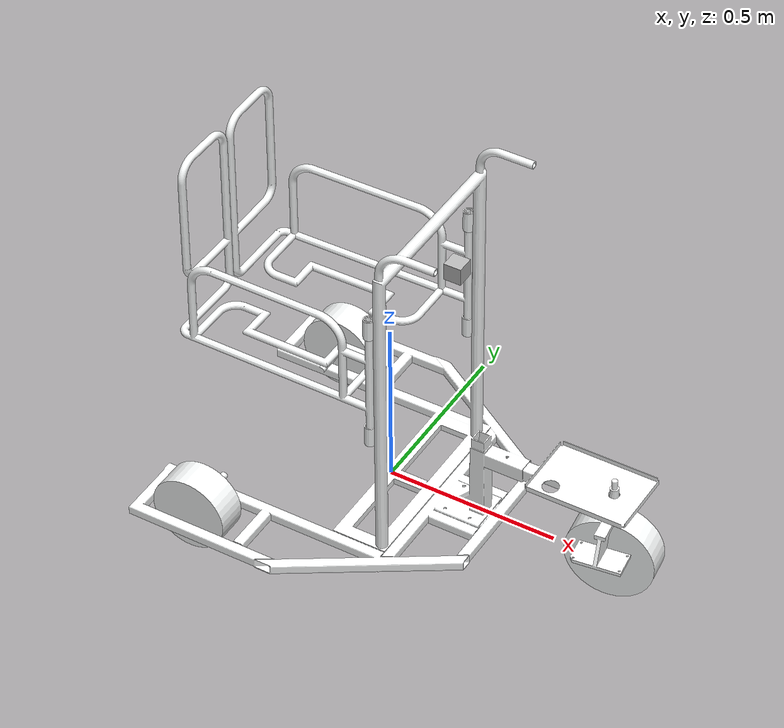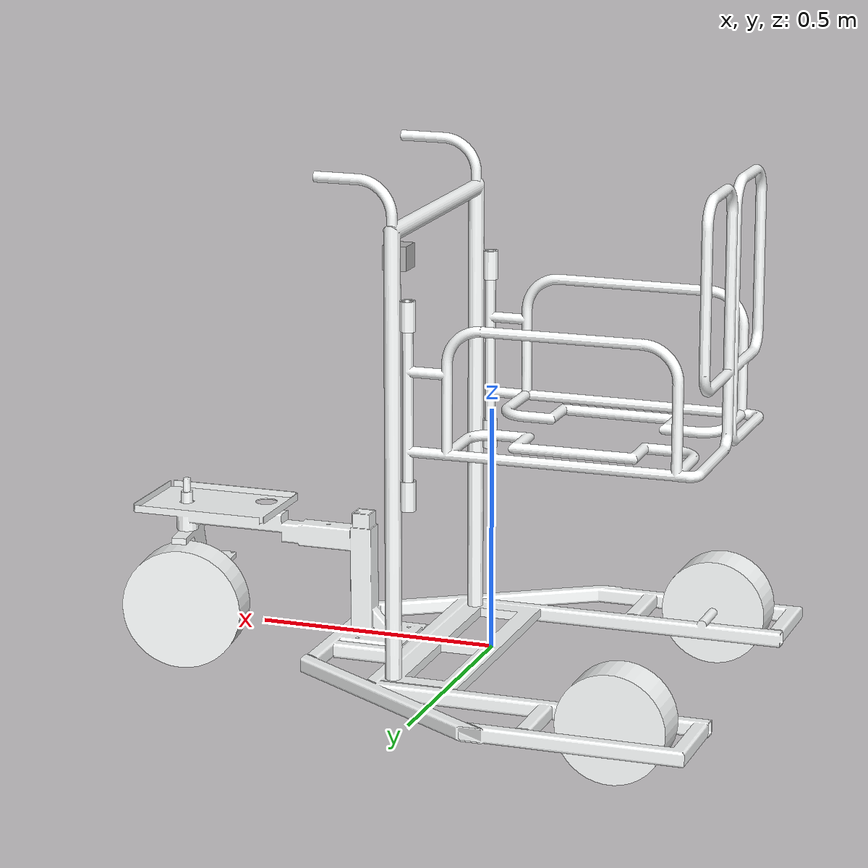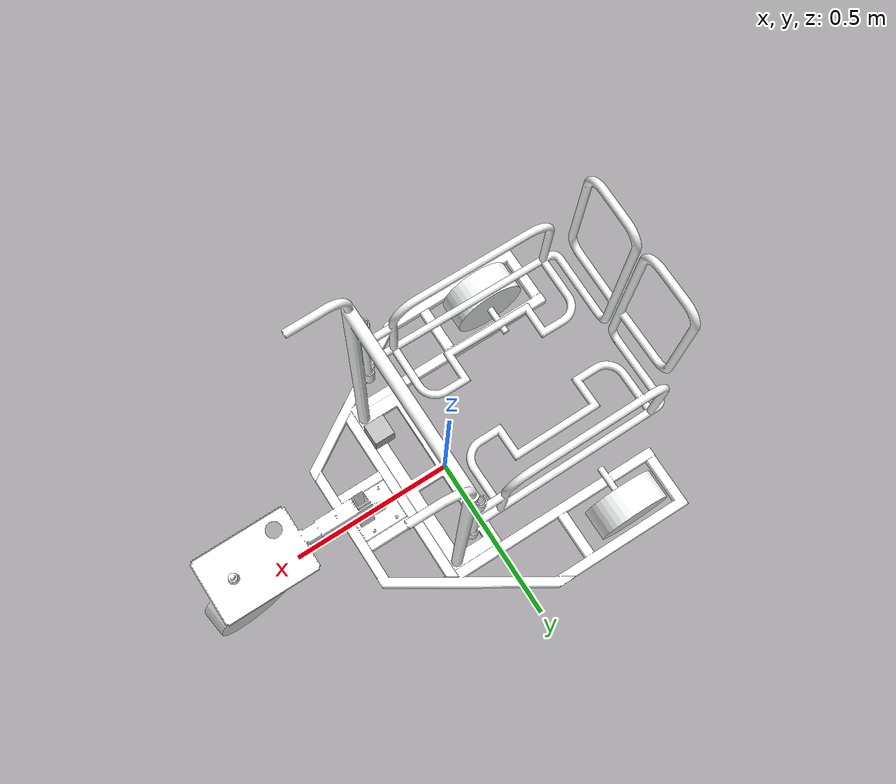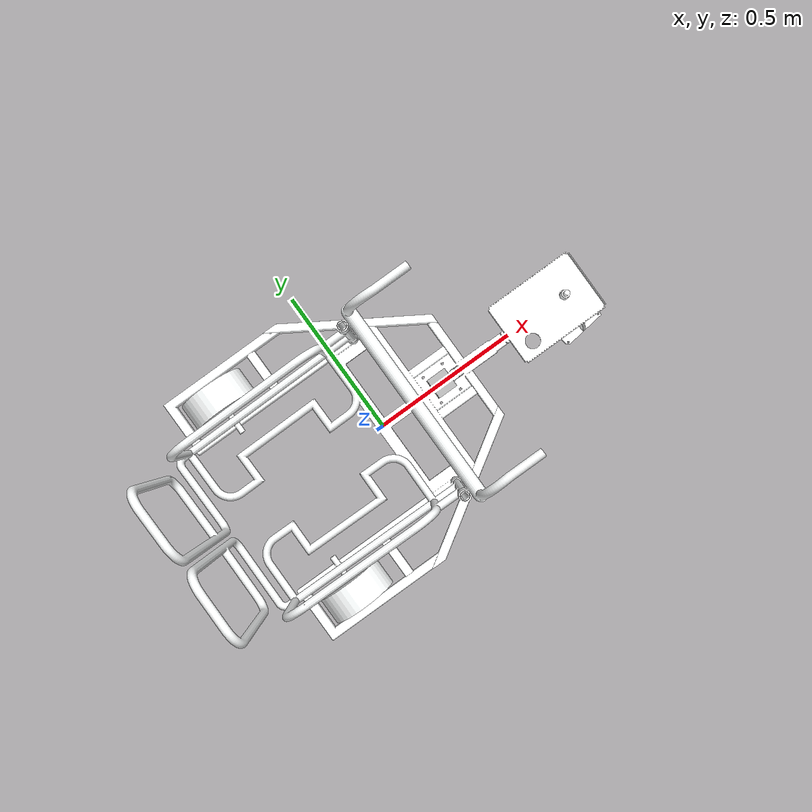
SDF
<sdf version='1.11'>
  <model name='robotdesign'>
    <link name='base_link'>
      <inertial>
        <pose>0.18001 2.8314999999999999e-06 0.14277000000000001 0 0 0</pose>
        <mass>6.1353999999999997</mass>
        <inertia>
          <ixx>0.092310000000000003</ixx>
          <ixy>0.0077965999999999999</ixy>
          <ixz>-0.0068618000000000004</ixz>
          <iyy>0.095326999999999995</iyy>
          <iyz>-5.9799999999999997e-05</iyz>
          <izz>0.056644</izz>
        </inertia>
      </inertial>
      <collision name='base_link_collision'>
        <pose>0 0 0 0 0 0</pose>
        <geometry>
          <mesh>
            <scale>1 1 1</scale>
            <uri>file:///home/kisali/fyp_ws/src/robotdesign/meshes/base_link.STL</uri>
          </mesh>
        </geometry>
      </collision>
      <visual name='base_link_visual'>
        <pose>0 0 0 0 0 0</pose>
        <geometry>
          <mesh>
            <scale>1 1 1</scale>
            <uri>file:///home/kisali/fyp_ws/src/robotdesign/meshes/base_link.STL</uri>
          </mesh>
        </geometry>
        <material>
          <diffuse>0.990199983 1 1 1</diffuse>
          <ambient>0.990199983 1 1 1</ambient>
        </material>
      </visual>
      <visual name='base_link_fixed_joint_lump__camera_link_visual_1'>
        <pose>0.20000000000000001 0 0.80000000000000004 0 0 0</pose>
        <geometry>
          <box>
            <size>0.050000000000000003 0.050000000000000003 0.050000000000000003</size>
          </box>
        </geometry>
      </visual>
      <sensor name='camera' type='camera'>
        <always_on>true</always_on>
        <update_rate>30</update_rate>
        <visualize>true</visualize>
        <camera>
          <horizontal_fov>1.0469999999999999</horizontal_fov>
          <image>
            <width>640</width>
            <height>480</height>
            <format>R8G8B8</format>
          </image>
          <clip>
            <near>0.10000000000000001</near>
            <far>100</far>
          </clip>
        </camera>
        <plugin name='gz::sim::systems::Sensors' filename='libgz-sim-sensors-system.so'/>
        <pose>0.20000000000000001 0 0.80000000000000004 0 0 0</pose>
      </sensor>
    </link>
    <joint name='chairleftjoint' type='revolute'>
      <pose relative_to='base_link'>0.089732000000000006 0.25 0.77000000000000002 -3.1415853071795872 0 0</pose>
      <parent>base_link</parent>
      <child>chairleft</child>
      <axis>
        <xyz>0 0 -1</xyz>
        <limit>
          <lower>-1.04</lower>
          <upper>0</upper>
          <effort>5</effort>
          <velocity>2</velocity>
        </limit>
        <dynamics>
          <damping>0.10000000000000001</damping>
          <friction>0</friction>
          <spring_reference>0</spring_reference>
          <spring_stiffness>0</spring_stiffness>
        </dynamics>
      </axis>
    </joint>
    <link name='chairleft'>
      <pose relative_to='chairleftjoint'>0 0 0 0 0 0</pose>
      <inertial>
        <pose>0 0 0 0 0 0</pose>
        <mass>0.68593999999999999</mass>
        <inertia>
          <ixx>0.0021356999999999999</ixx>
          <ixy>0</ixy>
          <ixz>0</ixz>
          <iyy>0.0039087000000000002</iyy>
          <iyz>0</iyz>
          <izz>0.0022193</izz>
        </inertia>
      </inertial>
      <collision name='chairleft_collision'>
        <pose>0 0 0 0 0 0</pose>
        <geometry>
          <mesh>
            <scale>1 1 1</scale>
            <uri>file:///home/kisali/fyp_ws/src/robotdesign/meshes/chairleft.STL</uri>
          </mesh>
        </geometry>
      </collision>
      <visual name='chairleft_visual'>
        <pose>0 0 0 0 0 0</pose>
        <geometry>
          <mesh>
            <scale>1 1 1</scale>
            <uri>file:///home/kisali/fyp_ws/src/robotdesign/meshes/chairleft.STL</uri>
          </mesh>
        </geometry>
        <material>
          <diffuse>0.990199983 1 1 1</diffuse>
          <ambient>0.990199983 1 1 1</ambient>
        </material>
      </visual>
    </link>
    <joint name='chairrightjoint' type='revolute'>
      <pose relative_to='base_link'>0.089732000000000006 -0.25 0.77000000000000002 -3.1415853071795872 0 0</pose>
      <parent>base_link</parent>
      <child>chairright</child>
      <axis>
        <xyz>0 0 -1</xyz>
        <limit>
          <lower>0</lower>
          <upper>1.04</upper>
          <effort>5</effort>
          <velocity>2</velocity>
        </limit>
        <dynamics>
          <damping>0.10000000000000001</damping>
          <friction>0</friction>
          <spring_reference>0</spring_reference>
          <spring_stiffness>0</spring_stiffness>
        </dynamics>
      </axis>
    </joint>
    <link name='chairright'>
      <pose relative_to='chairrightjoint'>0 0 0 0 0 0</pose>
      <inertial>
        <pose>0 0 0 0 0 0</pose>
        <mass>0.68593999999999999</mass>
        <inertia>
          <ixx>0.0021356999999999999</ixx>
          <ixy>0</ixy>
          <ixz>0</ixz>
          <iyy>0.0039087000000000002</iyy>
          <iyz>0</iyz>
          <izz>0.0022193</izz>
        </inertia>
      </inertial>
      <collision name='chairright_collision'>
        <pose>0 0 0 0 0 0</pose>
        <geometry>
          <mesh>
            <scale>1 1 1</scale>
            <uri>file:///home/kisali/fyp_ws/src/robotdesign/meshes/chairright.STL</uri>
          </mesh>
        </geometry>
      </collision>
      <visual name='chairright_visual'>
        <pose>0 0 0 0 0 0</pose>
        <geometry>
          <mesh>
            <scale>1 1 1</scale>
            <uri>file:///home/kisali/fyp_ws/src/robotdesign/meshes/chairright.STL</uri>
          </mesh>
        </geometry>
        <material>
          <diffuse>0.990199983 1 1 1</diffuse>
          <ambient>0.990199983 1 1 1</ambient>
        </material>
      </visual>
    </link>
    <joint name='frontjoint' type='revolute'>
      <pose relative_to='base_link'>0.67273000000000005 0 0.29389999999999999 -3.1415853071795872 0 0</pose>
      <parent>base_link</parent>
      <child>front</child>
      <axis>
        <xyz>0 0 -1</xyz>
        <limit>
          <lower>-1.0471999999999999</lower>
          <upper>1.0471999999999999</upper>
          <effort>5</effort>
          <velocity>2</velocity>
        </limit>
        <dynamics>
          <damping>0.10000000000000001</damping>
          <friction>0</friction>
          <spring_reference>0</spring_reference>
          <spring_stiffness>0</spring_stiffness>
        </dynamics>
      </axis>
    </joint>
    <link name='front'>
      <pose relative_to='frontjoint'>0 0 0 0 0 0</pose>
      <inertial>
        <pose>0 0 0 0 0 0</pose>
        <mass>0.26848</mass>
        <inertia>
          <ixx>0.0013401000000000001</ixx>
          <ixy>0</ixy>
          <ixz>0</ixz>
          <iyy>0.00092232000000000002</iyy>
          <iyz>0</iyz>
          <izz>0.00079465999999999998</izz>
        </inertia>
      </inertial>
      <collision name='front_collision'>
        <pose>0 0 0 0 0 0</pose>
        <geometry>
          <mesh>
            <scale>1 1 1</scale>
            <uri>file:///home/kisali/fyp_ws/src/robotdesign/meshes/front.STL</uri>
          </mesh>
        </geometry>
      </collision>
      <visual name='front_visual'>
        <pose>0 0 0 0 0 0</pose>
        <geometry>
          <mesh>
            <scale>1 1 1</scale>
            <uri>file:///home/kisali/fyp_ws/src/robotdesign/meshes/front.STL</uri>
          </mesh>
        </geometry>
        <material>
          <diffuse>0.990199983 1 1 1</diffuse>
          <ambient>0.990199983 1 1 1</ambient>
        </material>
      </visual>
    </link>
    <joint name='frontwheeljoint' type='revolute'>
      <pose relative_to='front'>-0.0080085 -0.061173999999999999 0.26898 -1.5708 0 0</pose>
      <parent>front</parent>
      <child>frontwheel</child>
      <axis>
        <xyz>-0.12981000000000001 0 -0.99153999999999998</xyz>
        <limit>
          <lower>-inf</lower>
          <upper>inf</upper>
        </limit>
        <dynamics>
          <damping>0.10000000000000001</damping>
          <friction>0</friction>
          <spring_reference>0</spring_reference>
          <spring_stiffness>0</spring_stiffness>
        </dynamics>
      </axis>
    </joint>
    <link name='frontwheel'>
      <pose relative_to='frontwheeljoint'>0 0 0 0 0 0</pose>
      <inertial>
        <pose>0 0 0 0 0 0</pose>
        <mass>4.0537000000000001</mass>
        <inertia>
          <ixx>0.018745999999999999</ixx>
          <ixy>0</ixy>
          <ixz>0</ixz>
          <iyy>0.018506999999999999</iyy>
          <iyz>0</iyz>
          <izz>0.032452000000000002</izz>
        </inertia>
      </inertial>
      <collision name='frontwheel_collision'>
        <pose>0 0 0 0 0 0</pose>
        <geometry>
          <mesh>
            <scale>1 1 1</scale>
            <uri>file:///home/kisali/fyp_ws/src/robotdesign/meshes/frontwheel.STL</uri>
          </mesh>
        </geometry>
      </collision>
      <visual name='frontwheel_visual'>
        <pose>0 0 0 0 0 0</pose>
        <geometry>
          <mesh>
            <scale>1 1 1</scale>
            <uri>file:///home/kisali/fyp_ws/src/robotdesign/meshes/frontwheel.STL</uri>
          </mesh>
        </geometry>
        <material>
          <diffuse>0.990199983 1 1 1</diffuse>
          <ambient>0.990199983 1 1 1</ambient>
        </material>
      </visual>
    </link>
    <joint name='leftwheeljoint' type='revolute'>
      <pose relative_to='base_link'>-0.37630000000000002 0.42197000000000001 0.01 1.5708 0 0</pose>
      <parent>base_link</parent>
      <child>leftwheel</child>
      <axis>
        <xyz>0 0 1</xyz>
        <limit>
          <lower>-inf</lower>
          <upper>inf</upper>
        </limit>
        <dynamics>
          <damping>0.10000000000000001</damping>
          <friction>0</friction>
          <spring_reference>0</spring_reference>
          <spring_stiffness>0</spring_stiffness>
        </dynamics>
      </axis>
    </joint>
    <link name='leftwheel'>
      <pose relative_to='leftwheeljoint'>0 0 0 0 0 0</pose>
      <inertial>
        <pose>0 0 0 0 0 0</pose>
        <mass>3.4211999999999998</mass>
        <inertia>
          <ixx>0.012658000000000001</ixx>
          <ixy>0</ixy>
          <ixz>0</ixz>
          <iyy>0.012658000000000001</iyy>
          <iyz>0</iyz>
          <izz>0.020698000000000001</izz>
        </inertia>
      </inertial>
      <collision name='leftwheel_collision'>
        <pose>0 0 0 0 0 0</pose>
        <geometry>
          <mesh>
            <scale>1 1 1</scale>
            <uri>file:///home/kisali/fyp_ws/src/robotdesign/meshes/leftwheel.STL</uri>
          </mesh>
        </geometry>
      </collision>
      <visual name='leftwheel_visual'>
        <pose>0 0 0 0 0 0</pose>
        <geometry>
          <mesh>
            <scale>1 1 1</scale>
            <uri>file:///home/kisali/fyp_ws/src/robotdesign/meshes/leftwheel.STL</uri>
          </mesh>
        </geometry>
        <material>
          <diffuse>0.990199983 1 1 1</diffuse>
          <ambient>0.990199983 1 1 1</ambient>
        </material>
      </visual>
    </link>
    <joint name='rightwheeljoint' type='revolute'>
      <pose relative_to='base_link'>-0.37630000000000002 -0.42415999999999998 0.01 1.5708 0 0</pose>
      <parent>base_link</parent>
      <child>rightwheel</child>
      <axis>
        <xyz>0 0 -1</xyz>
        <limit>
          <lower>-inf</lower>
          <upper>inf</upper>
        </limit>
        <dynamics>
          <damping>0.10000000000000001</damping>
          <friction>0</friction>
          <spring_reference>0</spring_reference>
          <spring_stiffness>0</spring_stiffness>
        </dynamics>
      </axis>
    </joint>
    <link name='rightwheel'>
      <pose relative_to='rightwheeljoint'>0 0 0 0 0 0</pose>
      <inertial>
        <pose>0 0 0 0 0 0</pose>
        <mass>3.4211999999999998</mass>
        <inertia>
          <ixx>0.012658000000000001</ixx>
          <ixy>0</ixy>
          <ixz>0</ixz>
          <iyy>0.012658000000000001</iyy>
          <iyz>0</iyz>
          <izz>0.020698000000000001</izz>
        </inertia>
      </inertial>
      <collision name='rightwheel_collision'>
        <pose>0 0 0 0 0 0</pose>
        <geometry>
          <mesh>
            <scale>1 1 1</scale>
            <uri>file:///home/kisali/fyp_ws/src/robotdesign/meshes/rightwheel.STL</uri>
          </mesh>
        </geometry>
      </collision>
      <visual name='rightwheel_visual'>
        <pose>0 0 0 0 0 0</pose>
        <geometry>
          <mesh>
            <scale>1 1 1</scale>
            <uri>file:///home/kisali/fyp_ws/src/robotdesign/meshes/rightwheel.STL</uri>
          </mesh>
        </geometry>
        <material>
          <diffuse>0.990199983 1 1 1</diffuse>
          <ambient>0.990199983 1 1 1</ambient>
        </material>
      </visual>
    </link>
    <!-- CAMERA LINK -->
<link name="camera_link">
  <pose>0.2 0 0.8 0 0 0</pose>

  <sensor name="camera" type="camera">
    <always_on>1</always_on>
    <update_rate>30</update_rate>

    <camera>
      <horizontal_fov>1.047</horizontal_fov>
      <image>
        <width>640</width>
        <height>480</height>
      </image>
      <clip>
        <near>0.1</near>
        <far>100</far>
      </clip>
    </camera>
  </sensor>
</link>

<!-- FIXED JOINT -->
<joint name="camera_joint" type="fixed">
  <parent>base_link</parent>
  <child>camera_link</child>
</joint>
  </model>
</sdf>
